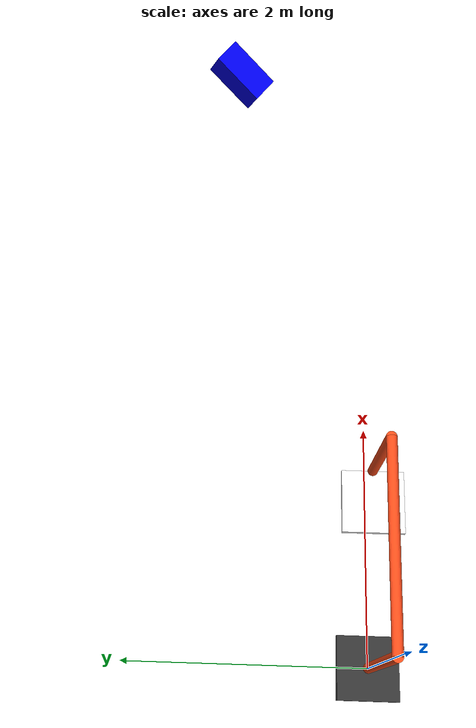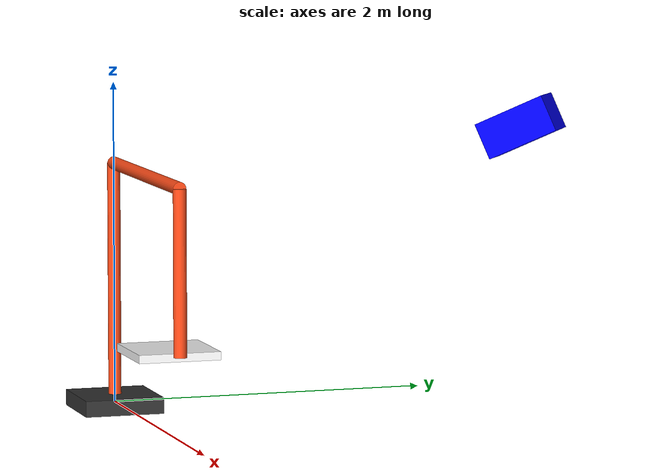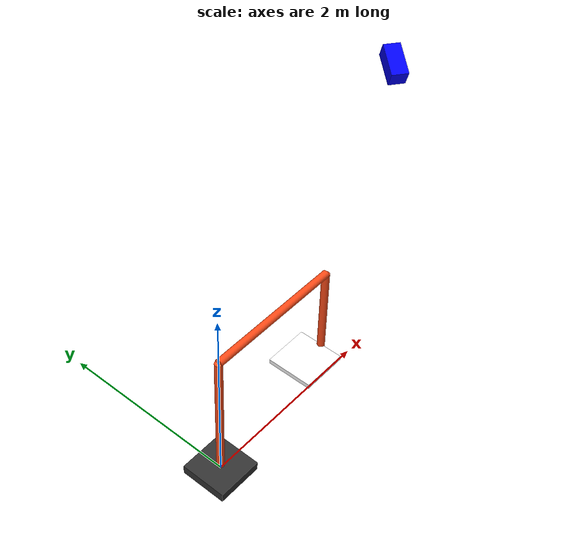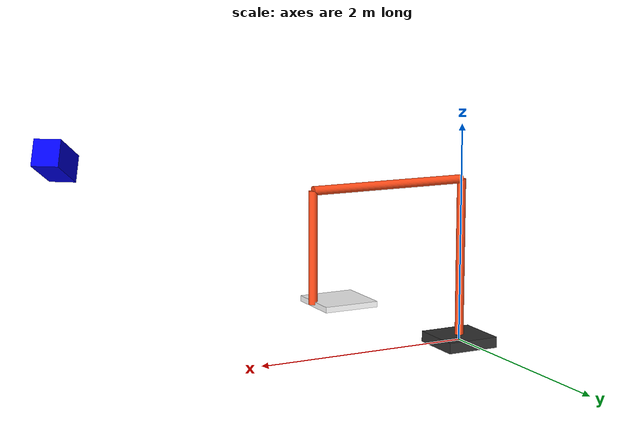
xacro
<?xml version="1.0"?>
<robot xmlns:xacro="http://www.ros.org/wiki/xacro" name="robot">

    <material name="grey">
        <color rgba="0.2 0.2 0.2 1"/>
    </material>

    <material name="white">
        <color rgba="1 1 1 1"/>
    </material>

    <material name="orange">
        <color rgba="1 0.3 0.1 1"/>
    </material>

    <material name="blue">
        <color rgba="0 0 1 1"/>
    </material>

    <link name="world"></link>

    <!-- Joint para la base: movimiento en yaw (alrededor del eje Z) -->
    <joint name="world_to_base" type="revolute">
        <parent link="world" />
        <child link="base" />
        <origin rpy="0 0 0" xyz="0 0 0" />
        <axis xyz="0 0 1" />
        <limit effort="1.0" lower="-3.14" upper="3.14" velocity="1.0" />
    </joint>

    <link name="base">
        <visual>
            <origin xyz="0 0 0" rpy="1.57 0 0"/>
            <geometry>
                <box size="0.5 0.1 0.5" />
            </geometry>
            <material name="grey" />
        </visual>
    </link>

    <!-- Joint para l3: movimiento en pitch (alrededor del eje Y) -->
    <joint name="base_to_l3" type="revolute">
        <parent link="base" />
        <child link="l3" />
        <origin rpy="0 -1.57 0" xyz="0 0 0" />
        <axis xyz="0 1 0" />
        <limit effort="0.1" lower="-1.3" upper="0.75" velocity="0.2"/>
    </joint>

    <link name="l3">
        <visual>
            <origin xyz="0.75 0 0" rpy="0 1.57 0"/>
            <geometry>
                <cylinder length="1.5" radius="0.04" />
            </geometry>
            <material name="orange" />
        </visual>
    </link>

    <!-- Joint para l2: movimiento en pitch (alrededor del eje Y) -->
    <joint name="l3_to_l2" type="revolute">
        <parent link="l3" />
        <child link="l2" />
        <origin rpy="0 1.57 0" xyz="1.5 0 0" />
        <axis xyz="0 1 0" />
        <limit effort="0.1" lower="-3.1" upper="0.2" velocity="0.2"/>
    </joint>

    <link name="l2">
        <visual>
            <origin xyz="0.75 0 0" rpy="0 1.57 0"/>
            <geometry>
                <cylinder length="1.5" radius="0.04" />
            </geometry>
            <material name="orange" />
        </visual>
    </link>

    <!-- Joint para l1: movimiento en pitch (alrededor del eje Y) -->
    <joint name="l2_to_l1" type="revolute">
        <parent link="l2" />
        <child link="l1" />
        <origin rpy="0 1.57 0" xyz="1.5 0 0" />
        <axis xyz="0 1 0" />
        <limit effort="0.1" lower="-3.1" upper="0.52" velocity="0.2"/>
    </joint>

    <link name="l1">
        <visual>
            <origin xyz="0.5 0 0" rpy="0 1.57 0"/>
            <geometry>
                <cylinder length="1" radius="0.04" />
            </geometry>
            <material name="orange" />
        </visual>
    </link>

    <!-- Joint para el grip: movimiento en pitch (alrededor del eje Y) -->
    <joint name="l1_to_grip" type="revolute">
        <parent link="l1" />
        <child link="grip" />
        <origin rpy="0 1.57 0" xyz="1 0 0" />
        <axis xyz="0 1 0" />
        <limit effort="0.1" lower="-3.1" upper="0.1" velocity="0.2"/>
    </joint>

    <link name="grip">
        <visual>
            <origin xyz="0.25 0 0"/>
            <geometry>
                <box size="0.5 0.5 0.05" />
            </geometry>
            <material name="white" />
        </visual>
    </link>

    <joint name="world_to_camera" type="fixed">
        <parent link="world" />
        <child link="camera" />
        <origin rpy="-2 0 2.5" xyz="4 1 2" />
    </joint>

    <link name="camera">
        <visual>
            <origin xyz="0 0 -0.2"/>
            <geometry>
                <box size="0.2 0.2 0.4" />
            </geometry>
            <material name="blue" />
        </visual>
    </link>

</robot>
